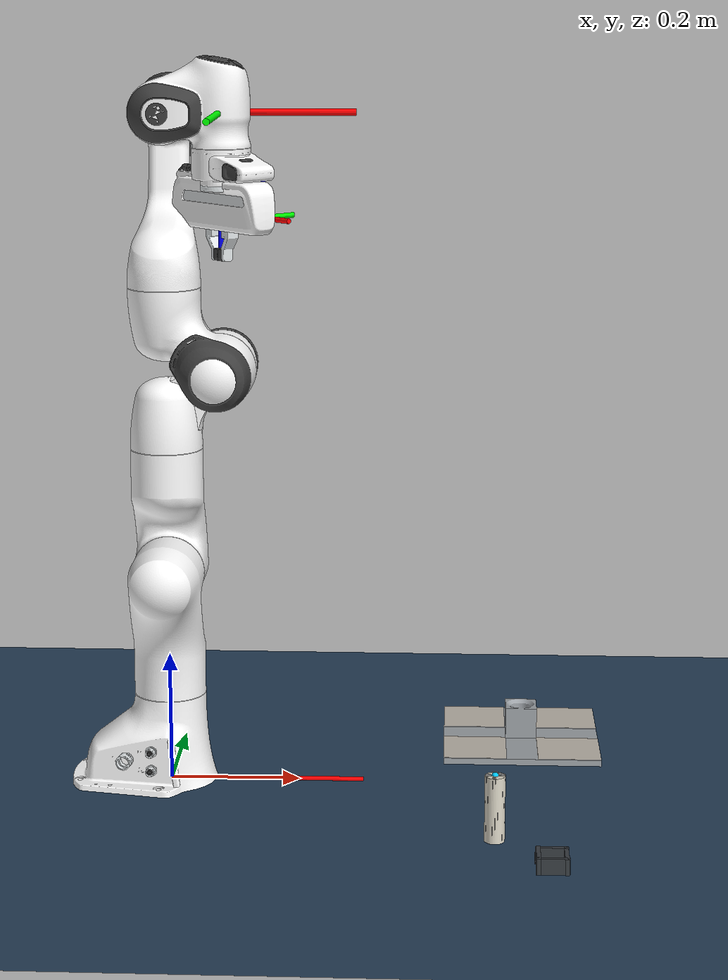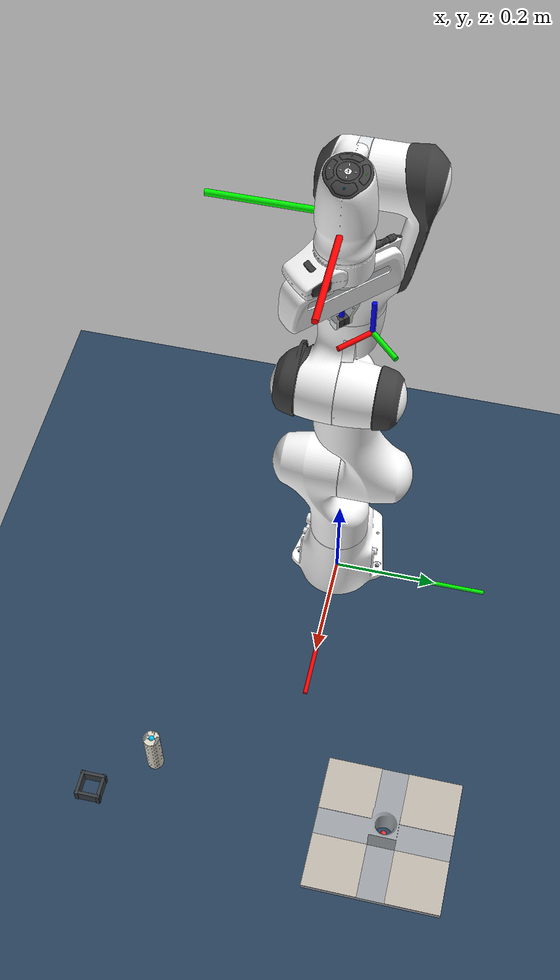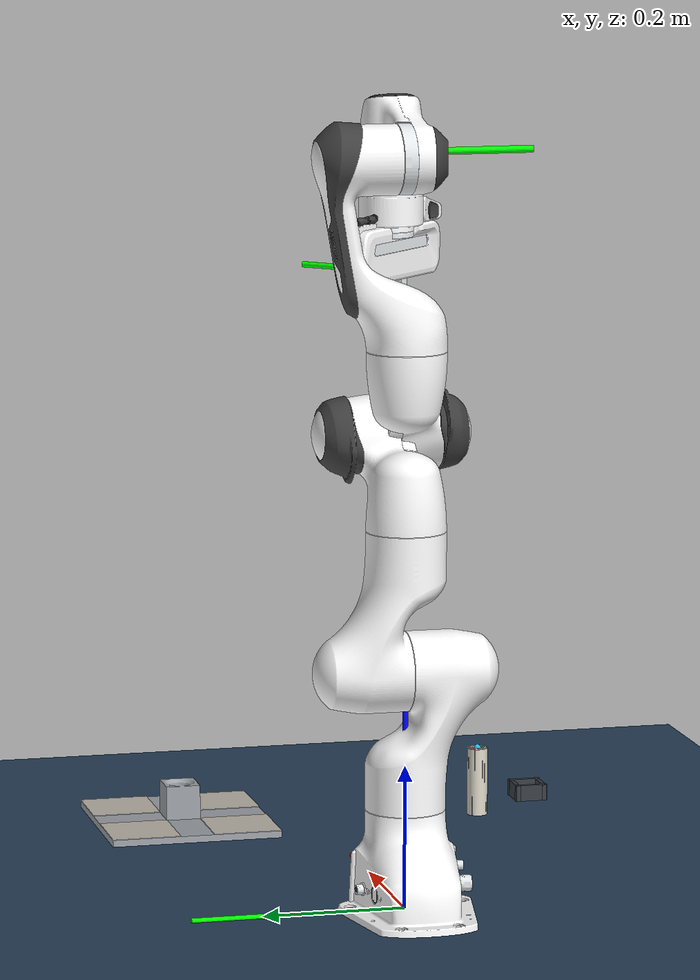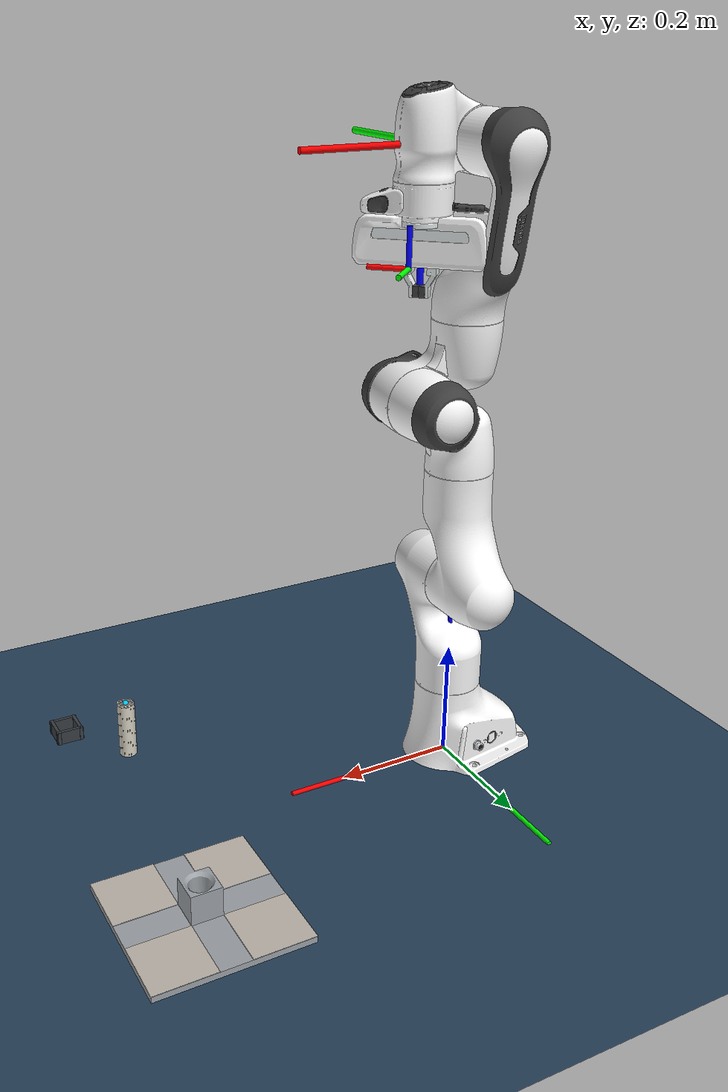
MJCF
<mujoco model="panda peg-in-hole assembly">
  <include file="panda_pos.xml"/>

  <statistic center="0.42 0 0.35" extent="1.0"/>

  <visual>
    <headlight diffuse="0.6 0.6 0.6" ambient="0.3 0.3 0.3" specular="0 0 0"/>
    <rgba haze="0.15 0.25 0.35 1"/>
    <global azimuth="120" elevation="-25"/>
  </visual>

  <asset>
    <texture type="skybox" builtin="gradient" rgb1="0.3 0.5 0.7" rgb2="0 0 0" width="512" height="3072"/>
    <texture type="2d" name="groundplane" builtin="checker" mark="edge"
      rgb1="0.2 0.3 0.4" rgb2="0.1 0.2 0.3" markrgb="0.8 0.8 0.8"
      width="300" height="300"/>

    <texture type="2d" name="apriltag_0_tex" file="/home/ethan/work/mujoco-learning-main/model/misc/textures/tag36h11_0.png"/>
    <texture type="2d" name="apriltag_1_tex" file="/home/ethan/work/mujoco-learning-main/model/misc/textures/tag36h11_1.png"/>
    <texture type="2d" name="apriltag_2_tex" file="/home/ethan/work/mujoco-learning-main/model/misc/textures/tag36h11_2.png"/>
    <texture type="2d" name="apriltag_3_tex" file="/home/ethan/work/mujoco-learning-main/model/misc/textures/tag36h11_3.png"/>

    <material name="groundplane" texture="groundplane" texuniform="true" texrepeat="5 5" reflectance="0.2"/>
    <material name="hole_base_mat" rgba="0.62 0.64 0.66 1" specular="0.35" shininess="0.2"/>
    <material name="peg_pin_mat" rgba="0.86 0.84 0.78 1" specular="0.55" shininess="0.35"/>
    <material name="peg_holder_mat" rgba="0.22 0.24 0.26 1" specular="0.2" shininess="0.1"/>
    <material name="collision_debug_mat" rgba="0.15 0.2 0.25 0"/>
    <material name="tag_board_white" rgba="1 1 1 1" specular="0.1" shininess="0.1"/>
    <material name="apriltag_0_mat" texture="apriltag_0_tex" texuniform="true" specular="0" shininess="0"/>
    <material name="apriltag_1_mat" texture="apriltag_1_tex" texuniform="true" specular="0" shininess="0"/>
    <material name="apriltag_2_mat" texture="apriltag_2_tex" texuniform="true" specular="0" shininess="0"/>
    <material name="apriltag_3_mat" texture="apriltag_3_tex" texuniform="true" specular="0" shininess="0"/>

    <mesh name="hole_base_visual_mesh" file="/home/ethan/work/mujoco-learning-main/src/peg_in_hole/assets/hole_base_visual.stl" scale="0.001 0.001 0.001"/>
    <mesh name="peg_pin_visual_mesh" file="/home/ethan/work/mujoco-learning-main/src/peg_in_hole/assets/peg_pin_visual.stl" scale="0.001 0.001 0.001"/>
    <mesh name="apriltag_square_100"
      vertex="-0.05 -0.05 -0.00005  0.05 -0.05 -0.00005  0.05 0.05 -0.00005  -0.05 0.05 -0.00005
              -0.05 -0.05 0.00005  0.05 -0.05 0.00005  0.05 0.05 0.00005  -0.05 0.05 0.00005"
      texcoord="0 0  1 0  1 1  0 1  1 0  0 0  0 1  1 1"
      face="0 2 1  0 3 2  4 5 6  4 6 7  0 1 5  0 5 4
            1 2 6  1 6 5  2 3 7  2 7 6  3 0 4  3 4 7"/>
  </asset>

  <worldbody>
    <light name="assembly_light" pos="0 0 1.6" dir="0 0 -1" directional="true"/>
    <geom name="floor" size="0 0 0.05" type="plane" material="groundplane"/>

    <body name="world_frame" pos="0 0 0">
      <geom name="world_x" type="cylinder" size="0.004" fromto="0 0 0 0.3 0 0" rgba="1 0 0 1" contype="0" conaffinity="0"/>
      <geom name="world_y" type="cylinder" size="0.004" fromto="0 0 0 0 0.3 0" rgba="0 1 0 1" contype="0" conaffinity="0"/>
      <geom name="world_z" type="cylinder" size="0.004" fromto="0 0 0 0 0 0.3" rgba="0 0 1 1" contype="0" conaffinity="0"/>
    </body>

    <body name="peg_body" pos="0.5 -0.24 0.05" quat="1 0 0 0">
      <freejoint name="peg_freejoint"/>
      <geom name="peg_visual" type="mesh" mesh="peg_pin_visual_mesh" material="peg_pin_mat"
        pos="0 0 -0.11" contype="0" conaffinity="0"/>
      <geom name="peg_collision" type="cylinder" size="0.015 0.05" pos="0 0 0"
        mass="0.02" solref="0.003 1" solimp="0.98 0.995 0.001" friction="4.0 0.1 0.01"/>
      <site name="peg_center_site" pos="0 0 0" size="0.006" rgba="0 0.8 1 1"/>
      <site name="peg_top_site" pos="0 0 0.05" size="0.005" rgba="0 0.8 1 1"/>
      <site name="peg_bottom_site" pos="0 0 -0.05" size="0.005" rgba="0 0.8 1 1"/>
      <site name="peg_grasp_site" pos="0 0 0.02" size="0.007" rgba="1 0.8 0 1"/>
    </body>

    <body name="peg_holder" pos="0.58 -0.34 0">
      <geom name="peg_holder_east" type="box" size="0.003 0.024 0.012" pos="0.020 0 0.012"
        material="peg_holder_mat" friction="0.2 0.001 0.0001"/>
      <geom name="peg_holder_west" type="box" size="0.003 0.024 0.012" pos="-0.020 0 0.012"
        material="peg_holder_mat" friction="0.2 0.001 0.0001"/>
      <geom name="peg_holder_north" type="box" size="0.024 0.003 0.012" pos="0 0.020 0.012"
        material="peg_holder_mat" friction="0.2 0.001 0.0001"/>
      <geom name="peg_holder_south" type="box" size="0.024 0.003 0.012" pos="0 -0.020 0.012"
        material="peg_holder_mat" friction="0.2 0.001 0.0001"/>
    </body>

    <body name="hole_base" pos="0.55 0.20 0.0" quat="1 0 0 0">
      <geom name="hole_base_visual" type="mesh" mesh="hole_base_visual_mesh" material="hole_base_mat"
        contype="0" conaffinity="0"/>

      <site name="hole_bottom_site" pos="0 0 0.015" size="0.005" rgba="1 0.2 0.2 1"/>

      <geom name="hole_plate_collision_left" type="box" size="0.05125 0.125 0.030" pos="-0.07375 0 0.030"
        material="collision_debug_mat"/>
      <geom name="hole_plate_collision_right" type="box" size="0.05125 0.125 0.030" pos="0.07375 0 0.030"
        material="collision_debug_mat"/>
      <geom name="hole_plate_collision_front" type="box" size="0.0225 0.05125 0.030" pos="0 -0.07375 0.030"
        material="collision_debug_mat"/>
      <geom name="hole_plate_collision_back" type="box" size="0.0225 0.05125 0.030" pos="0 0.07375 0.030"
        material="collision_debug_mat"/>

      <!-- Inner-wall collision is intentionally looser than the visual STL for insertion/admittance tests.
           Measured practical lateral tolerance: x ~= 3.4 mm, y ~= 3.0 mm. -->
      <geom name="hole_inner_wall_east" type="box" size="0.003 0.012 0.022" pos="0.024 0 0.032"
        material="collision_debug_mat"/>
      <geom name="hole_inner_wall_west" type="box" size="0.003 0.012 0.022" pos="-0.024 0 0.032"
        material="collision_debug_mat"/>
      <geom name="hole_inner_wall_north" type="box" size="0.003 0.012 0.022" pos="0 0.022 0.032"
        euler="0 0 1.570796" material="collision_debug_mat"/>
      <geom name="hole_inner_wall_south" type="box" size="0.003 0.012 0.022" pos="0 -0.022 0.032"
        euler="0 0 1.570796" material="collision_debug_mat"/>
      <geom name="hole_inner_wall_ne" type="box" size="0.003 0.012 0.022" pos="0.01556 0.01556 0.032"
        euler="0 0 0.785398" material="collision_debug_mat"/>
      <geom name="hole_inner_wall_nw" type="box" size="0.003 0.012 0.022" pos="-0.01556 0.01556 0.032"
        euler="0 0 2.356194" material="collision_debug_mat"/>
      <geom name="hole_inner_wall_sw" type="box" size="0.003 0.012 0.022" pos="-0.01556 -0.01556 0.032"
        euler="0 0 -2.356194" material="collision_debug_mat"/>
      <geom name="hole_inner_wall_se" type="box" size="0.003 0.012 0.022" pos="0.01556 -0.01556 0.032"
        euler="0 0 -0.785398" material="collision_debug_mat"/>

      <geom name="hole_chamfer_collision_east" type="box" size="0.004 0.026 0.003" pos="0.026 0 0.060"
        euler="0 0.55 0" material="collision_debug_mat"/>
      <geom name="hole_chamfer_collision_west" type="box" size="0.004 0.026 0.003" pos="-0.026 0 0.060"
        euler="0 -0.55 0" material="collision_debug_mat"/>
      <geom name="hole_chamfer_collision_north" type="box" size="0.026 0.004 0.003" pos="0 0.026 0.060"
        euler="-0.55 0 0" material="collision_debug_mat"/>
      <geom name="hole_chamfer_collision_south" type="box" size="0.026 0.004 0.003" pos="0 -0.026 0.060"
        euler="0.55 0 0" material="collision_debug_mat"/>

      <body name="hole_tag_0" pos="-0.075 0.075 0.0105">
        <geom name="tag_board_0" type="box" size="0.05 0.05 0.0005" material="tag_board_white" contype="0" conaffinity="0"/>
        <geom name="apriltag_0" type="mesh" mesh="apriltag_square_100" pos="0 0 0.00055"
          material="apriltag_0_mat" contype="0" conaffinity="0"/>
      </body>
      <body name="hole_tag_1" pos="0.075 0.075 0.0105">
        <geom name="tag_board_1" type="box" size="0.05 0.05 0.0005" material="tag_board_white" contype="0" conaffinity="0"/>
        <geom name="apriltag_1" type="mesh" mesh="apriltag_square_100" pos="0 0 0.00055"
          material="apriltag_1_mat" contype="0" conaffinity="0"/>
      </body>
      <body name="hole_tag_2" pos="0.075 -0.075 0.0105">
        <geom name="tag_board_2" type="box" size="0.05 0.05 0.0005" material="tag_board_white" contype="0" conaffinity="0"/>
        <geom name="apriltag_2" type="mesh" mesh="apriltag_square_100" pos="0 0 0.00055"
          material="apriltag_2_mat" contype="0" conaffinity="0"/>
      </body>
      <body name="hole_tag_3" pos="-0.075 -0.075 0.0105">
        <geom name="tag_board_3" type="box" size="0.05 0.05 0.0005" material="tag_board_white" contype="0" conaffinity="0"/>
        <geom name="apriltag_3" type="mesh" mesh="apriltag_square_100" pos="0 0 0.00055"
          material="apriltag_3_mat" contype="0" conaffinity="0"/>
      </body>
    </body>
  </worldbody>

  <equality>
    <weld name="peg_grasp_weld" body1="ee_center_body" body2="peg_body" active="false"
      solref="0.002 1" solimp="0.95 0.99 0.001"/>
  </equality>

  <sensor>
    <force name="ee_force" site="ee_center_site"/>
  </sensor>

  <keyframe>
    <key name="home"
      qpos="
      0 0 0 -1.57079 0 3.0 -1.7853 0.04 0.04
      0.58 -0.34 0.05 1 0 0 0
      "
      ctrl="0 0 0 -1.57079 0 3.0 -1.7853 255"/>
  </keyframe>
</mujoco>

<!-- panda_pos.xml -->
<mujoco model="panda">
  <compiler angle="radian" meshdir="assets" autolimits="true"/>

  <option integrator="implicitfast"/>

  <default>
    <default class="panda">
      <material specular="0.5" shininess="0.25"/>
      <joint armature="0.1" damping="1" axis="0 0 1" range="-2.8973 2.8973"/>
      <general dyntype="none" biastype="affine" ctrlrange="-2.8973 2.8973" forcerange="-87 87"/>
      <default class="finger">
        <joint axis="0 1 0" type="slide" range="0 0.04"/>
      </default>

      <default class="visual">
        <geom type="mesh" contype="0" conaffinity="0" group="2"/>
      </default>
      <default class="collision">
        <geom type="mesh" group="3"/>
        <default class="fingertip_pad_collision_1">
          <geom type="box" size="0.0085 0.004 0.0085" pos="0 0.0055 0.0445"/>
        </default>
        <default class="fingertip_pad_collision_2">
          <geom type="box" size="0.003 0.002 0.003" pos="0.0055 0.002 0.05"/>
        </default>
        <default class="fingertip_pad_collision_3">
          <geom type="box" size="0.003 0.002 0.003" pos="-0.0055 0.002 0.05"/>
        </default>
        <default class="fingertip_pad_collision_4">
          <geom type="box" size="0.003 0.002 0.0035" pos="0.0055 0.002 0.0395"/>
        </default>
        <default class="fingertip_pad_collision_5">
          <geom type="box" size="0.003 0.002 0.0035" pos="-0.0055 0.002 0.0395"/>
        </default>
      </default>
    </default>
  </default>

  <asset>
    <material class="panda" name="white" rgba="1 1 1 1"/>
    <material class="panda" name="off_white" rgba="0.901961 0.921569 0.929412 1"/>
    <material class="panda" name="black" rgba="0.25 0.25 0.25 1"/>
    <material class="panda" name="green" rgba="0 1 0 1"/>
    <material class="panda" name="light_blue" rgba="0.039216 0.541176 0.780392 1"/>

    <!-- Collision meshes -->
    <mesh name="link0_c" file="link0.stl"/>
    <mesh name="link1_c" file="link1.stl"/>
    <mesh name="link2_c" file="link2.stl"/>
    <mesh name="link3_c" file="link3.stl"/>
    <mesh name="link4_c" file="link4.stl"/>
    <mesh name="link5_c0" file="link5_collision_0.obj"/>
    <mesh name="link5_c1" file="link5_collision_1.obj"/>
    <mesh name="link5_c2" file="link5_collision_2.obj"/>
    <mesh name="link6_c" file="link6.stl"/>
    <mesh name="link7_c" file="link7.stl"/>
    <mesh name="hand_c" file="hand.stl"/>

    <!-- Visual meshes -->
    <mesh file="link0_0.obj"/>
    <mesh file="link0_1.obj"/>
    <mesh file="link0_2.obj"/>
    <mesh file="link0_3.obj"/>
    <mesh file="link0_4.obj"/>
    <mesh file="link0_5.obj"/>
    <mesh file="link0_7.obj"/>
    <mesh file="link0_8.obj"/>
    <mesh file="link0_9.obj"/>
    <mesh file="link0_10.obj"/>
    <mesh file="link0_11.obj"/>
    <mesh file="link1.obj"/>
    <mesh file="link2.obj"/>
    <mesh file="link3_0.obj"/>
    <mesh file="link3_1.obj"/>
    <mesh file="link3_2.obj"/>
    <mesh file="link3_3.obj"/>
    <mesh file="link4_0.obj"/>
    <mesh file="link4_1.obj"/>
    <mesh file="link4_2.obj"/>
    <mesh file="link4_3.obj"/>
    <mesh file="link5_0.obj"/>
    <mesh file="link5_1.obj"/>
    <mesh file="link5_2.obj"/>
    <mesh file="link6_0.obj"/>
    <mesh file="link6_1.obj"/>
    <mesh file="link6_2.obj"/>
    <mesh file="link6_3.obj"/>
    <mesh file="link6_4.obj"/>
    <mesh file="link6_5.obj"/>
    <mesh file="link6_6.obj"/>
    <mesh file="link6_7.obj"/>
    <mesh file="link6_8.obj"/>
    <mesh file="link6_9.obj"/>
    <mesh file="link6_10.obj"/>
    <mesh file="link6_11.obj"/>
    <mesh file="link6_12.obj"/>
    <mesh file="link6_13.obj"/>
    <mesh file="link6_14.obj"/>
    <mesh file="link6_15.obj"/>
    <mesh file="link6_16.obj"/>
    <mesh file="link7_0.obj"/>
    <mesh file="link7_1.obj"/>
    <mesh file="link7_2.obj"/>
    <mesh file="link7_3.obj"/>
    <mesh file="link7_4.obj"/>
    <mesh file="link7_5.obj"/>
    <mesh file="link7_6.obj"/>
    <mesh file="link7_7.obj"/>
    <mesh file="hand_0.obj"/>
    <mesh file="hand_1.obj"/>
    <mesh file="hand_2.obj"/>
    <mesh file="hand_3.obj"/>
    <mesh file="hand_4.obj"/>
    <mesh file="finger_0.obj"/>
    <mesh file="finger_1.obj"/>
  </asset>

  <worldbody>
    <light name="top" pos="0 0 2" mode="trackcom"/>
    <body name="link0" childclass="panda">
      <inertial mass="0.629769" pos="-0.041018 -0.00014 0.049974"
        fullinertia="0.00315 0.00388 0.004285 8.2904e-7 0.00015 8.2299e-6"/>
      <geom mesh="link0_0" material="off_white" class="visual"/>
      <geom mesh="link0_1" material="black" class="visual"/>
      <geom mesh="link0_2" material="off_white" class="visual"/>
      <geom mesh="link0_3" material="black" class="visual"/>
      <geom mesh="link0_4" material="off_white" class="visual"/>
      <geom mesh="link0_5" material="black" class="visual"/>
      <geom mesh="link0_7" material="white" class="visual"/>
      <geom mesh="link0_8" material="white" class="visual"/>
      <geom mesh="link0_9" material="black" class="visual"/>
      <geom mesh="link0_10" material="off_white" class="visual"/>
      <geom mesh="link0_11" material="white" class="visual"/>
      <geom mesh="link0_c" class="collision"/>
      <body name="link1" pos="0 0 0.333">
        <inertial mass="4.970684" pos="0.003875 0.002081 -0.04762"
          fullinertia="0.70337 0.70661 0.0091170 -0.00013900 0.0067720 0.019169"/>
        <joint name="joint1"/>
        <geom material="white" mesh="link1" class="visual"/>
        <geom mesh="link1_c" class="collision"/>
        <body name="link2" quat="1 -1 0 0">
          <inertial mass="0.646926" pos="-0.003141 -0.02872 0.003495"
            fullinertia="0.0079620 2.8110e-2 2.5995e-2 -3.925e-3 1.0254e-2 7.04e-4"/>
          <joint name="joint2" range="-1.7628 1.7628"/>
          <geom material="white" mesh="link2" class="visual"/>
          <geom mesh="link2_c" class="collision"/>
          <body name="link3" pos="0 -0.316 0" quat="1 1 0 0">
            <joint name="joint3"/>
            <inertial mass="3.228604" pos="2.7518e-2 3.9252e-2 -6.6502e-2"
              fullinertia="3.7242e-2 3.6155e-2 1.083e-2 -4.761e-3 -1.1396e-2 -1.2805e-2"/>
            <geom mesh="link3_0" material="white" class="visual"/>
            <geom mesh="link3_1" material="white" class="visual"/>
            <geom mesh="link3_2" material="white" class="visual"/>
            <geom mesh="link3_3" material="black" class="visual"/>
            <geom mesh="link3_c" class="collision"/>
            <body name="link4" pos="0.0825 0 0" quat="1 1 0 0">
              <inertial mass="3.587895" pos="-5.317e-2 1.04419e-1 2.7454e-2"
                fullinertia="2.5853e-2 1.9552e-2 2.8323e-2 7.796e-3 -1.332e-3 8.641e-3"/>
              <joint name="joint4" range="-3.0718 -0.0698"/>
              <geom mesh="link4_0" material="white" class="visual"/>
              <geom mesh="link4_1" material="white" class="visual"/>
              <geom mesh="link4_2" material="black" class="visual"/>
              <geom mesh="link4_3" material="white" class="visual"/>
              <geom mesh="link4_c" class="collision"/>
              <body name="link5" pos="-0.0825 0.384 0" quat="1 -1 0 0">
                <inertial mass="1.225946" pos="-1.1953e-2 4.1065e-2 -3.8437e-2"
                  fullinertia="3.5549e-2 2.9474e-2 8.627e-3 -2.117e-3 -4.037e-3 2.29e-4"/>
                <joint name="joint5"/>
                <geom mesh="link5_0" material="black" class="visual"/>
                <geom mesh="link5_1" material="white" class="visual"/>
                <geom mesh="link5_2" material="white" class="visual"/>
                <geom mesh="link5_c0" class="collision"/>
                <geom mesh="link5_c1" class="collision"/>
                <geom mesh="link5_c2" class="collision"/>
                <body name="link6" quat="1 1 0 0">
                  <inertial mass="1.666555" pos="6.0149e-2 -1.4117e-2 -1.0517e-2"
                    fullinertia="1.964e-3 4.354e-3 5.433e-3 1.09e-4 -1.158e-3 3.41e-4"/>
                  <joint name="joint6" range="-0.0175 3.7525"/>
                  <geom mesh="link6_0" material="off_white" class="visual"/>
                  <geom mesh="link6_1" material="white" class="visual"/>
                  <geom mesh="link6_2" material="black" class="visual"/>
                  <geom mesh="link6_3" material="white" class="visual"/>
                  <geom mesh="link6_4" material="white" class="visual"/>
                  <geom mesh="link6_5" material="white" class="visual"/>
                  <geom mesh="link6_6" material="white" class="visual"/>
                  <geom mesh="link6_7" material="light_blue" class="visual"/>
                  <geom mesh="link6_8" material="light_blue" class="visual"/>
                  <geom mesh="link6_9" material="black" class="visual"/>
                  <geom mesh="link6_10" material="black" class="visual"/>
                  <geom mesh="link6_11" material="white" class="visual"/>
                  <geom mesh="link6_12" material="green" class="visual"/>
                  <geom mesh="link6_13" material="white" class="visual"/>
                  <geom mesh="link6_14" material="black" class="visual"/>
                  <geom mesh="link6_15" material="black" class="visual"/>
                  <geom mesh="link6_16" material="white" class="visual"/>
                  <geom mesh="link6_c" class="collision"/>
                  <body name="link7" pos="0.088 0 0" quat="1 1 0 0">
                    <inertial mass="7.35522e-01" pos="1.0517e-2 -4.252e-3 6.1597e-2"
                      fullinertia="1.2516e-2 1.0027e-2 4.815e-3 -4.28e-4 -1.196e-3 -7.41e-4"/>
                    <joint name="joint7"/>
                    <geom mesh="link7_0" material="white" class="visual"/>
                    <geom mesh="link7_1" material="black" class="visual"/>
                    <geom mesh="link7_2" material="black" class="visual"/>
                    <geom mesh="link7_3" material="black" class="visual"/>
                    <geom mesh="link7_4" material="black" class="visual"/>
                    <geom mesh="link7_5" material="black" class="visual"/>
                    <geom mesh="link7_6" material="black" class="visual"/>
                    <geom mesh="link7_7" material="white" class="visual"/>
                    <geom mesh="link7_c" class="collision"/>
                    <body name="hand_quat" pos="0 0 0">
                        <geom name="hand_x" type="cylinder" size="0.005" fromto="0 0 0 0.2 0 0" rgba="1 0 0 1" contype="0"
                              conaffinity="0"/>
                        <geom name="hand_y" type="cylinder" size="0.005" fromto="0 0 0 0 0.2 0" rgba="0 1 0 1" contype="0"
                              conaffinity="0"/>
                        <geom name="hand_z" type="cylinder" size="0.005" fromto="0 0 0 0 0 0.2" rgba="0 0 1 1" contype="0"
                              conaffinity="0"/>
                    </body>

                    <body name="hand" pos="0 0 0.107" quat="0.9238795 0 0 -0.3826834">
                      <inertial mass="0.73" pos="-0.01 0 0.03" diaginertia="0.001 0.0025 0.0017"/>
                      <geom mesh="hand_0" material="off_white" class="visual"/>
                      <geom mesh="hand_1" material="black" class="visual"/>
                      <geom mesh="hand_2" material="black" class="visual"/>
                      <geom mesh="hand_3" material="white" class="visual"/>
                      <geom mesh="hand_4" material="off_white" class="visual"/>
                      <geom mesh="hand_c" class="collision"/>

                      <!-- refer to the panda_grasptarget in panda.urdf in panda_gym -->
                      <body name="ee_center_body" pos="0 0 0.105" quat="1 0 0 0">
                          <site name='ee_center_site' size="0.01" group="3"/>
                          <!-- Eye-in-Hand Camera -->
                          <camera name="eye_in_hand"
                              pos="0.08 0 -0.05"
                              euler="0 3.14 1.57"
                              fovy="60"
                              resolution="640 480"/>
                          <body name="eye_in_hand_frame" pos="0.08 0 -0.05" euler="0 3.14 1.57">
                            <geom name="cam_x" type="cylinder" size="0.004" fromto="0 0 0 0.06 0 0" rgba="1 0 0 1" contype="0" conaffinity="0"/>
                            <geom name="cam_y" type="cylinder" size="0.004" fromto="0 0 0 0 0.06 0" rgba="0 1 0 1" contype="0" conaffinity="0"/>
                            <geom name="cam_z" type="cylinder" size="0.004" fromto="0 0 0 0 0 0.06" rgba="0 0 1 1" contype="0" conaffinity="0"/>
                          </body>
                      </body>

                      <body name="left_finger" pos="0 0 0.0584">
                        <inertial mass="0.015" pos="0 0 0" diaginertia="2.375e-6 2.375e-6 7.5e-7"/>
                        <joint name="finger_joint1" class="finger"/>
                        <geom mesh="finger_0" material="off_white" class="visual"/>
                        <geom mesh="finger_1" material="black" class="visual"/>
                        <geom mesh="finger_0" class="collision"/>
                        <geom class="fingertip_pad_collision_1"/>
                        <geom class="fingertip_pad_collision_2"/>
                        <geom class="fingertip_pad_collision_3"/>
                        <geom class="fingertip_pad_collision_4"/>
                        <geom class="fingertip_pad_collision_5"/>
                      </body>
                      <body name="right_finger" pos="0 0 0.0584" quat="0 0 0 1">
                        <inertial mass="0.015" pos="0 0 0" diaginertia="2.375e-6 2.375e-6 7.5e-7"/>
                        <joint name="finger_joint2" class="finger"/>
                        <geom mesh="finger_0" material="off_white" class="visual"/>
                        <geom mesh="finger_1" material="black" class="visual"/>
                        <geom mesh="finger_0" class="collision"/>
                        <geom class="fingertip_pad_collision_1"/>
                        <geom class="fingertip_pad_collision_2"/>
                        <geom class="fingertip_pad_collision_3"/>
                        <geom class="fingertip_pad_collision_4"/>
                        <geom class="fingertip_pad_collision_5"/>
                      </body>
                    </body>
                  </body>
                </body>
              </body>
            </body>
          </body>
        </body>
      </body>
    </body>
  </worldbody>

  <tendon>
    <fixed name="split">
      <joint joint="finger_joint1" coef="0.5"/>
      <joint joint="finger_joint2" coef="0.5"/>
    </fixed>
  </tendon>

  <equality>
    <joint joint1="finger_joint1" joint2="finger_joint2" solimp="0.95 0.99 0.001" solref="0.005 1"/>
  </equality>

  <actuator>
    <position name="joint1_pos" joint="joint1" kp="800" kv="80" ctrlrange="-6.28 6.28" gear="1.0"/>
    <position name="joint2_pos" joint="joint2" kp="800" kv="80" ctrlrange="-6.28 6.28" gear="1.0"/>
    <position name="joint3_pos" joint="joint3" kp="800" kv="80" ctrlrange="-6.28 6.28" gear="1.0"/>
    <position name="joint4_pos" joint="joint4" kp="800" kv="80" ctrlrange="-6.28 6.28" gear="1.0"/>
    <position name="joint5_pos" joint="joint5" kp="800" kv="80" ctrlrange="-6.28 6.28" gear="1.0"/>
    <position name="joint6_pos" joint="joint6" kp="800" kv="80" ctrlrange="-6.28 6.28" gear="1.0"/>
    <position name="joint7_pos" joint="joint7" kp="800" kv="80" ctrlrange="-6.28 6.28" gear="1.0"/>
    <general class="panda" name="actuator8" tendon="split"
             forcerange="-100 100" ctrlrange="0 255"
             gainprm="0.01568627451 0" biasprm="0 -100 -10"/>
  </actuator>

  <contact>
    <exclude body1="link0" body2="link1"/>
  </contact>
</mujoco>
